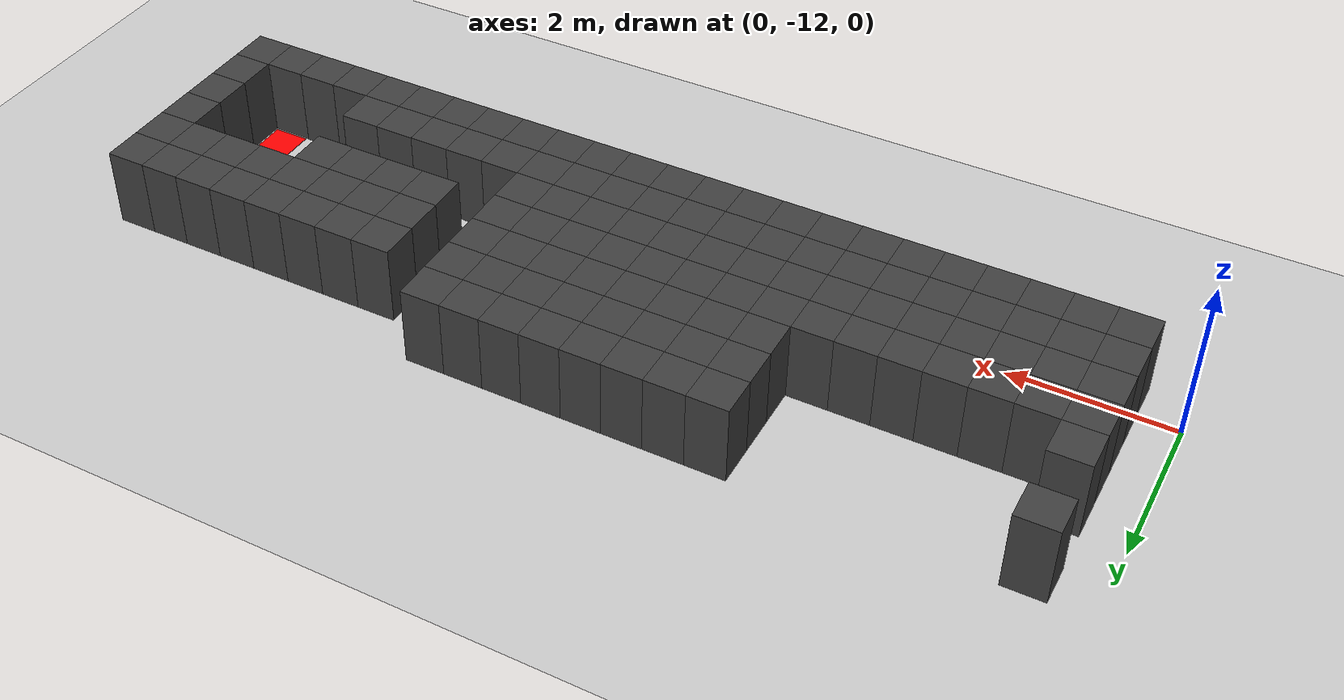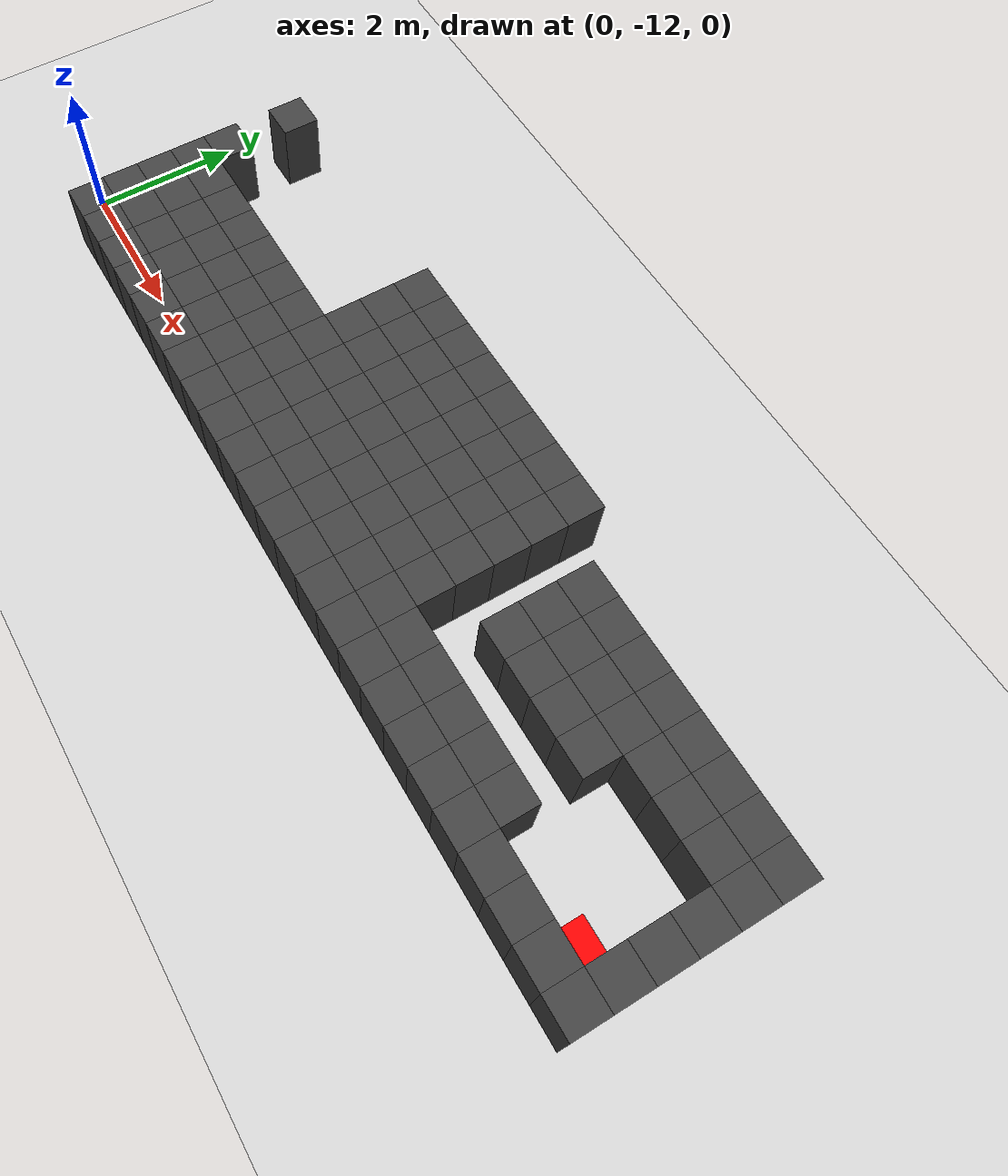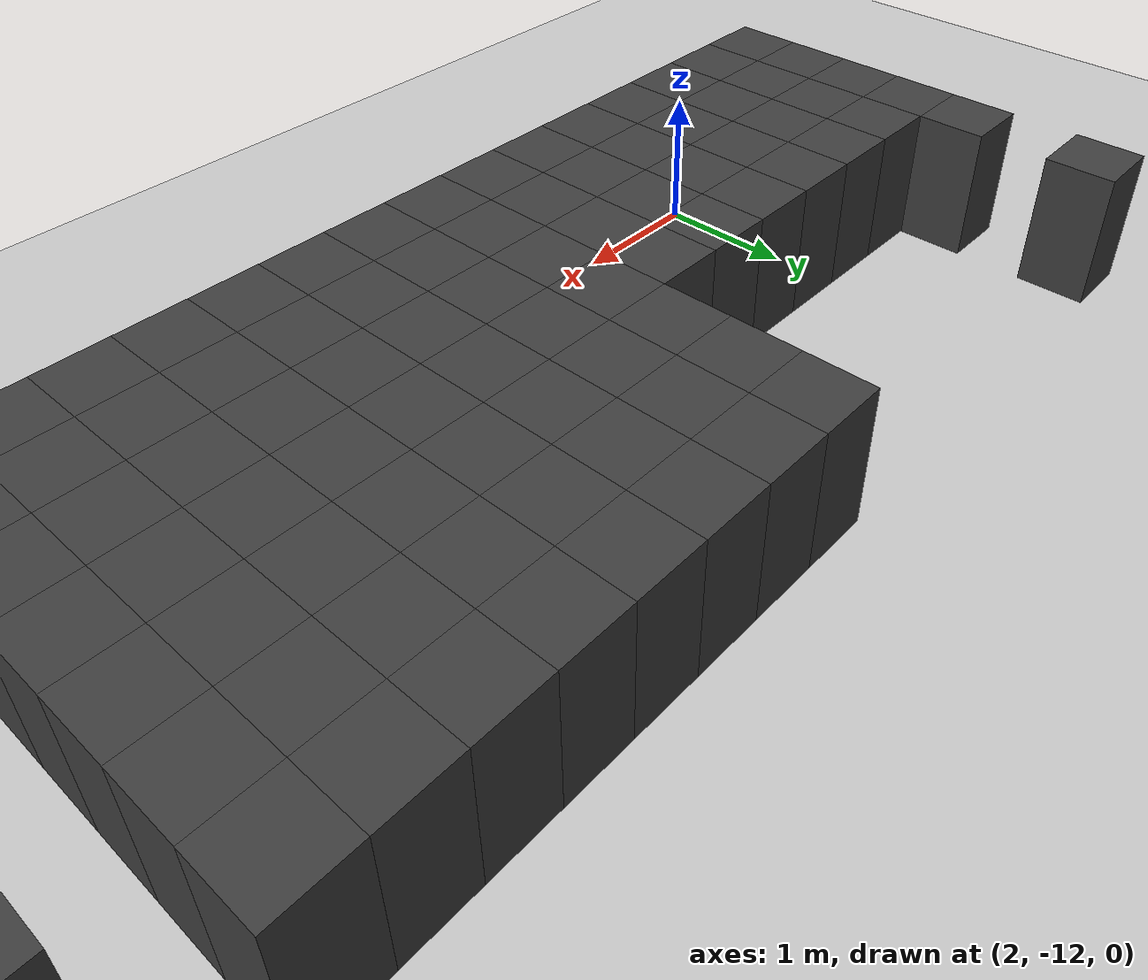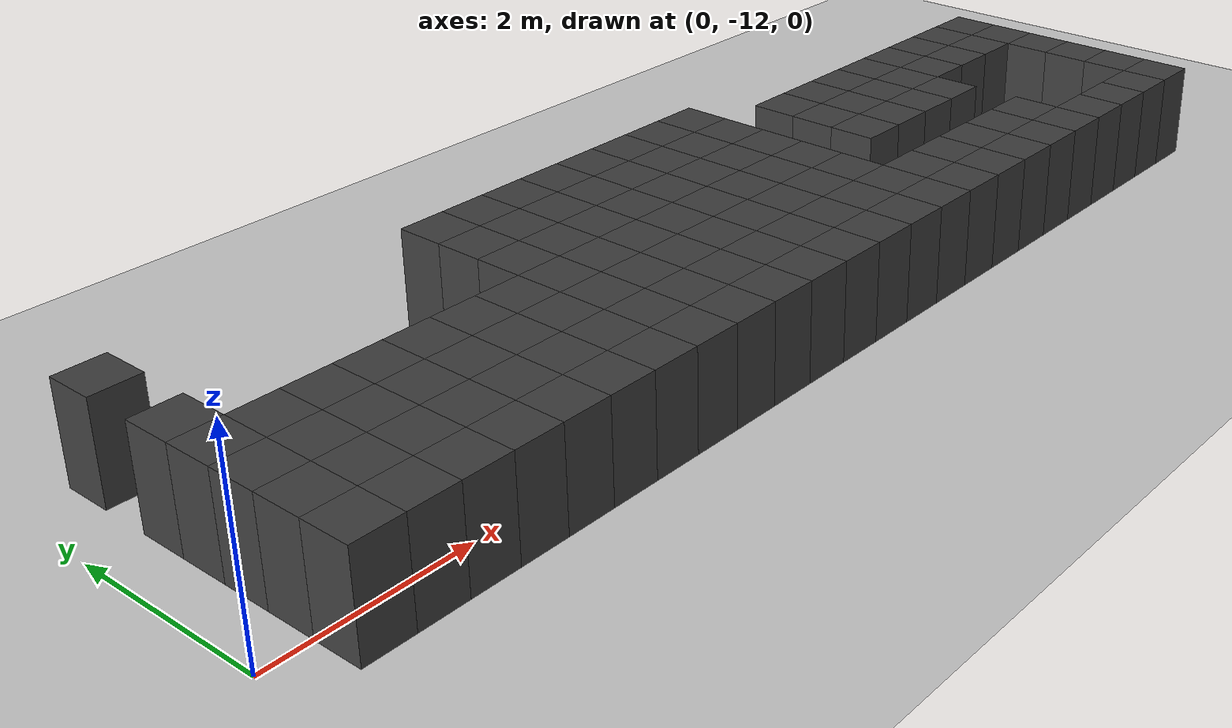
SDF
<sdf version="1.7">
 <world name="map_14802">
  <model name="ground_plane">
   <static>true</static>
   <link name="link">
    <collision name="collision">
     <geometry><plane><normal>0 0 1</normal><size>200 200</size></plane></geometry>
    </collision>
    <visual name="visual">
     <geometry><plane><normal>0 0 1</normal><size>200 200</size></plane></geometry>
     <material><ambient>0.8 0.8 0.8 1</ambient><diffuse>0.8 0.8 0.8 1</diffuse></material>
    </visual>
   </link>
  </model>
  <model name="maze_environment">
   <static>true</static>
   <link name="wall_1453">
    <pose>0.750 -9.250 0.500 0 0 0</pose>
    <collision name="col"><geometry><box><size>0.5 0.5 1.0</size></box></geometry></collision>
    <visual name="vis">
     <geometry><box><size>0.5 0.5 1.0</size></box></geometry>
     <material><ambient>0.15 0.15 0.15 1</ambient><diffuse>0.25 0.25 0.25 1</diffuse></material>
    </visual>
   </link>
   <link name="wall_1454">
    <pose>4.250 -9.250 0.500 0 0 0</pose>
    <collision name="col"><geometry><box><size>0.5 0.5 1.0</size></box></geometry></collision>
    <visual name="vis">
     <geometry><box><size>0.5 0.5 1.0</size></box></geometry>
     <material><ambient>0.15 0.15 0.15 1</ambient><diffuse>0.25 0.25 0.25 1</diffuse></material>
    </visual>
   </link>
   <link name="wall_1455">
    <pose>4.750 -9.250 0.500 0 0 0</pose>
    <collision name="col"><geometry><box><size>0.5 0.5 1.0</size></box></geometry></collision>
    <visual name="vis">
     <geometry><box><size>0.5 0.5 1.0</size></box></geometry>
     <material><ambient>0.15 0.15 0.15 1</ambient><diffuse>0.25 0.25 0.25 1</diffuse></material>
    </visual>
   </link>
   <link name="wall_1456">
    <pose>5.250 -9.250 0.500 0 0 0</pose>
    <collision name="col"><geometry><box><size>0.5 0.5 1.0</size></box></geometry></collision>
    <visual name="vis">
     <geometry><box><size>0.5 0.5 1.0</size></box></geometry>
     <material><ambient>0.15 0.15 0.15 1</ambient><diffuse>0.25 0.25 0.25 1</diffuse></material>
    </visual>
   </link>
   <link name="wall_1457">
    <pose>5.750 -9.250 0.500 0 0 0</pose>
    <collision name="col"><geometry><box><size>0.5 0.5 1.0</size></box></geometry></collision>
    <visual name="vis">
     <geometry><box><size>0.5 0.5 1.0</size></box></geometry>
     <material><ambient>0.15 0.15 0.15 1</ambient><diffuse>0.25 0.25 0.25 1</diffuse></material>
    </visual>
   </link>
   <link name="wall_1458">
    <pose>6.250 -9.250 0.500 0 0 0</pose>
    <collision name="col"><geometry><box><size>0.5 0.5 1.0</size></box></geometry></collision>
    <visual name="vis">
     <geometry><box><size>0.5 0.5 1.0</size></box></geometry>
     <material><ambient>0.15 0.15 0.15 1</ambient><diffuse>0.25 0.25 0.25 1</diffuse></material>
    </visual>
   </link>
   <link name="wall_1459">
    <pose>6.750 -9.250 0.500 0 0 0</pose>
    <collision name="col"><geometry><box><size>0.5 0.5 1.0</size></box></geometry></collision>
    <visual name="vis">
     <geometry><box><size>0.5 0.5 1.0</size></box></geometry>
     <material><ambient>0.15 0.15 0.15 1</ambient><diffuse>0.25 0.25 0.25 1</diffuse></material>
    </visual>
   </link>
   <link name="wall_1460">
    <pose>7.250 -9.250 0.500 0 0 0</pose>
    <collision name="col"><geometry><box><size>0.5 0.5 1.0</size></box></geometry></collision>
    <visual name="vis">
     <geometry><box><size>0.5 0.5 1.0</size></box></geometry>
     <material><ambient>0.15 0.15 0.15 1</ambient><diffuse>0.25 0.25 0.25 1</diffuse></material>
    </visual>
   </link>
   <link name="wall_1461">
    <pose>7.750 -9.250 0.500 0 0 0</pose>
    <collision name="col"><geometry><box><size>0.5 0.5 1.0</size></box></geometry></collision>
    <visual name="vis">
     <geometry><box><size>0.5 0.5 1.0</size></box></geometry>
     <material><ambient>0.15 0.15 0.15 1</ambient><diffuse>0.25 0.25 0.25 1</diffuse></material>
    </visual>
   </link>
   <link name="wall_1494">
    <pose>4.250 -9.750 0.500 0 0 0</pose>
    <collision name="col"><geometry><box><size>0.5 0.5 1.0</size></box></geometry></collision>
    <visual name="vis">
     <geometry><box><size>0.5 0.5 1.0</size></box></geometry>
     <material><ambient>0.15 0.15 0.15 1</ambient><diffuse>0.25 0.25 0.25 1</diffuse></material>
    </visual>
   </link>
   <link name="wall_1495">
    <pose>4.750 -9.750 0.500 0 0 0</pose>
    <collision name="col"><geometry><box><size>0.5 0.5 1.0</size></box></geometry></collision>
    <visual name="vis">
     <geometry><box><size>0.5 0.5 1.0</size></box></geometry>
     <material><ambient>0.15 0.15 0.15 1</ambient><diffuse>0.25 0.25 0.25 1</diffuse></material>
    </visual>
   </link>
   <link name="wall_1496">
    <pose>5.250 -9.750 0.500 0 0 0</pose>
    <collision name="col"><geometry><box><size>0.5 0.5 1.0</size></box></geometry></collision>
    <visual name="vis">
     <geometry><box><size>0.5 0.5 1.0</size></box></geometry>
     <material><ambient>0.15 0.15 0.15 1</ambient><diffuse>0.25 0.25 0.25 1</diffuse></material>
    </visual>
   </link>
   <link name="wall_1497">
    <pose>5.750 -9.750 0.500 0 0 0</pose>
    <collision name="col"><geometry><box><size>0.5 0.5 1.0</size></box></geometry></collision>
    <visual name="vis">
     <geometry><box><size>0.5 0.5 1.0</size></box></geometry>
     <material><ambient>0.15 0.15 0.15 1</ambient><diffuse>0.25 0.25 0.25 1</diffuse></material>
    </visual>
   </link>
   <link name="wall_1498">
    <pose>6.250 -9.750 0.500 0 0 0</pose>
    <collision name="col"><geometry><box><size>0.5 0.5 1.0</size></box></geometry></collision>
    <visual name="vis">
     <geometry><box><size>0.5 0.5 1.0</size></box></geometry>
     <material><ambient>0.15 0.15 0.15 1</ambient><diffuse>0.25 0.25 0.25 1</diffuse></material>
    </visual>
   </link>
   <link name="wall_1499">
    <pose>6.750 -9.750 0.500 0 0 0</pose>
    <collision name="col"><geometry><box><size>0.5 0.5 1.0</size></box></geometry></collision>
    <visual name="vis">
     <geometry><box><size>0.5 0.5 1.0</size></box></geometry>
     <material><ambient>0.15 0.15 0.15 1</ambient><diffuse>0.25 0.25 0.25 1</diffuse></material>
    </visual>
   </link>
   <link name="wall_1500">
    <pose>7.250 -9.750 0.500 0 0 0</pose>
    <collision name="col"><geometry><box><size>0.5 0.5 1.0</size></box></geometry></collision>
    <visual name="vis">
     <geometry><box><size>0.5 0.5 1.0</size></box></geometry>
     <material><ambient>0.15 0.15 0.15 1</ambient><diffuse>0.25 0.25 0.25 1</diffuse></material>
    </visual>
   </link>
   <link name="wall_1501">
    <pose>7.750 -9.750 0.500 0 0 0</pose>
    <collision name="col"><geometry><box><size>0.5 0.5 1.0</size></box></geometry></collision>
    <visual name="vis">
     <geometry><box><size>0.5 0.5 1.0</size></box></geometry>
     <material><ambient>0.15 0.15 0.15 1</ambient><diffuse>0.25 0.25 0.25 1</diffuse></material>
    </visual>
   </link>
   <link name="wall_1502">
    <pose>8.750 -9.750 0.500 0 0 0</pose>
    <collision name="col"><geometry><box><size>0.5 0.5 1.0</size></box></geometry></collision>
    <visual name="vis">
     <geometry><box><size>0.5 0.5 1.0</size></box></geometry>
     <material><ambient>0.15 0.15 0.15 1</ambient><diffuse>0.25 0.25 0.25 1</diffuse></material>
    </visual>
   </link>
   <link name="wall_1503">
    <pose>9.250 -9.750 0.500 0 0 0</pose>
    <collision name="col"><geometry><box><size>0.5 0.5 1.0</size></box></geometry></collision>
    <visual name="vis">
     <geometry><box><size>0.5 0.5 1.0</size></box></geometry>
     <material><ambient>0.15 0.15 0.15 1</ambient><diffuse>0.25 0.25 0.25 1</diffuse></material>
    </visual>
   </link>
   <link name="wall_1504">
    <pose>9.750 -9.750 0.500 0 0 0</pose>
    <collision name="col"><geometry><box><size>0.5 0.5 1.0</size></box></geometry></collision>
    <visual name="vis">
     <geometry><box><size>0.5 0.5 1.0</size></box></geometry>
     <material><ambient>0.15 0.15 0.15 1</ambient><diffuse>0.25 0.25 0.25 1</diffuse></material>
    </visual>
   </link>
   <link name="wall_1505">
    <pose>10.250 -9.750 0.500 0 0 0</pose>
    <collision name="col"><geometry><box><size>0.5 0.5 1.0</size></box></geometry></collision>
    <visual name="vis">
     <geometry><box><size>0.5 0.5 1.0</size></box></geometry>
     <material><ambient>0.15 0.15 0.15 1</ambient><diffuse>0.25 0.25 0.25 1</diffuse></material>
    </visual>
   </link>
   <link name="wall_1506">
    <pose>10.750 -9.750 0.500 0 0 0</pose>
    <collision name="col"><geometry><box><size>0.5 0.5 1.0</size></box></geometry></collision>
    <visual name="vis">
     <geometry><box><size>0.5 0.5 1.0</size></box></geometry>
     <material><ambient>0.15 0.15 0.15 1</ambient><diffuse>0.25 0.25 0.25 1</diffuse></material>
    </visual>
   </link>
   <link name="wall_1507">
    <pose>11.250 -9.750 0.500 0 0 0</pose>
    <collision name="col"><geometry><box><size>0.5 0.5 1.0</size></box></geometry></collision>
    <visual name="vis">
     <geometry><box><size>0.5 0.5 1.0</size></box></geometry>
     <material><ambient>0.15 0.15 0.15 1</ambient><diffuse>0.25 0.25 0.25 1</diffuse></material>
    </visual>
   </link>
   <link name="wall_1508">
    <pose>11.750 -9.750 0.500 0 0 0</pose>
    <collision name="col"><geometry><box><size>0.5 0.5 1.0</size></box></geometry></collision>
    <visual name="vis">
     <geometry><box><size>0.5 0.5 1.0</size></box></geometry>
     <material><ambient>0.15 0.15 0.15 1</ambient><diffuse>0.25 0.25 0.25 1</diffuse></material>
    </visual>
   </link>
   <link name="wall_1509">
    <pose>12.250 -9.750 0.500 0 0 0</pose>
    <collision name="col"><geometry><box><size>0.5 0.5 1.0</size></box></geometry></collision>
    <visual name="vis">
     <geometry><box><size>0.5 0.5 1.0</size></box></geometry>
     <material><ambient>0.15 0.15 0.15 1</ambient><diffuse>0.25 0.25 0.25 1</diffuse></material>
    </visual>
   </link>
   <link name="wall_1536">
    <pose>0.750 -10.250 0.500 0 0 0</pose>
    <collision name="col"><geometry><box><size>0.5 0.5 1.0</size></box></geometry></collision>
    <visual name="vis">
     <geometry><box><size>0.5 0.5 1.0</size></box></geometry>
     <material><ambient>0.15 0.15 0.15 1</ambient><diffuse>0.25 0.25 0.25 1</diffuse></material>
    </visual>
   </link>
   <link name="wall_1537">
    <pose>4.250 -10.250 0.500 0 0 0</pose>
    <collision name="col"><geometry><box><size>0.5 0.5 1.0</size></box></geometry></collision>
    <visual name="vis">
     <geometry><box><size>0.5 0.5 1.0</size></box></geometry>
     <material><ambient>0.15 0.15 0.15 1</ambient><diffuse>0.25 0.25 0.25 1</diffuse></material>
    </visual>
   </link>
   <link name="wall_1538">
    <pose>4.750 -10.250 0.500 0 0 0</pose>
    <collision name="col"><geometry><box><size>0.5 0.5 1.0</size></box></geometry></collision>
    <visual name="vis">
     <geometry><box><size>0.5 0.5 1.0</size></box></geometry>
     <material><ambient>0.15 0.15 0.15 1</ambient><diffuse>0.25 0.25 0.25 1</diffuse></material>
    </visual>
   </link>
   <link name="wall_1539">
    <pose>5.250 -10.250 0.500 0 0 0</pose>
    <collision name="col"><geometry><box><size>0.5 0.5 1.0</size></box></geometry></collision>
    <visual name="vis">
     <geometry><box><size>0.5 0.5 1.0</size></box></geometry>
     <material><ambient>0.15 0.15 0.15 1</ambient><diffuse>0.25 0.25 0.25 1</diffuse></material>
    </visual>
   </link>
   <link name="wall_1540">
    <pose>5.750 -10.250 0.500 0 0 0</pose>
    <collision name="col"><geometry><box><size>0.5 0.5 1.0</size></box></geometry></collision>
    <visual name="vis">
     <geometry><box><size>0.5 0.5 1.0</size></box></geometry>
     <material><ambient>0.15 0.15 0.15 1</ambient><diffuse>0.25 0.25 0.25 1</diffuse></material>
    </visual>
   </link>
   <link name="wall_1541">
    <pose>6.250 -10.250 0.500 0 0 0</pose>
    <collision name="col"><geometry><box><size>0.5 0.5 1.0</size></box></geometry></collision>
    <visual name="vis">
     <geometry><box><size>0.5 0.5 1.0</size></box></geometry>
     <material><ambient>0.15 0.15 0.15 1</ambient><diffuse>0.25 0.25 0.25 1</diffuse></material>
    </visual>
   </link>
   <link name="wall_1542">
    <pose>6.750 -10.250 0.500 0 0 0</pose>
    <collision name="col"><geometry><box><size>0.5 0.5 1.0</size></box></geometry></collision>
    <visual name="vis">
     <geometry><box><size>0.5 0.5 1.0</size></box></geometry>
     <material><ambient>0.15 0.15 0.15 1</ambient><diffuse>0.25 0.25 0.25 1</diffuse></material>
    </visual>
   </link>
   <link name="wall_1543">
    <pose>7.250 -10.250 0.500 0 0 0</pose>
    <collision name="col"><geometry><box><size>0.5 0.5 1.0</size></box></geometry></collision>
    <visual name="vis">
     <geometry><box><size>0.5 0.5 1.0</size></box></geometry>
     <material><ambient>0.15 0.15 0.15 1</ambient><diffuse>0.25 0.25 0.25 1</diffuse></material>
    </visual>
   </link>
   <link name="wall_1544">
    <pose>7.750 -10.250 0.500 0 0 0</pose>
    <collision name="col"><geometry><box><size>0.5 0.5 1.0</size></box></geometry></collision>
    <visual name="vis">
     <geometry><box><size>0.5 0.5 1.0</size></box></geometry>
     <material><ambient>0.15 0.15 0.15 1</ambient><diffuse>0.25 0.25 0.25 1</diffuse></material>
    </visual>
   </link>
   <link name="wall_1545">
    <pose>8.750 -10.250 0.500 0 0 0</pose>
    <collision name="col"><geometry><box><size>0.5 0.5 1.0</size></box></geometry></collision>
    <visual name="vis">
     <geometry><box><size>0.5 0.5 1.0</size></box></geometry>
     <material><ambient>0.15 0.15 0.15 1</ambient><diffuse>0.25 0.25 0.25 1</diffuse></material>
    </visual>
   </link>
   <link name="wall_1546">
    <pose>9.250 -10.250 0.500 0 0 0</pose>
    <collision name="col"><geometry><box><size>0.5 0.5 1.0</size></box></geometry></collision>
    <visual name="vis">
     <geometry><box><size>0.5 0.5 1.0</size></box></geometry>
     <material><ambient>0.15 0.15 0.15 1</ambient><diffuse>0.25 0.25 0.25 1</diffuse></material>
    </visual>
   </link>
   <link name="wall_1547">
    <pose>9.750 -10.250 0.500 0 0 0</pose>
    <collision name="col"><geometry><box><size>0.5 0.5 1.0</size></box></geometry></collision>
    <visual name="vis">
     <geometry><box><size>0.5 0.5 1.0</size></box></geometry>
     <material><ambient>0.15 0.15 0.15 1</ambient><diffuse>0.25 0.25 0.25 1</diffuse></material>
    </visual>
   </link>
   <link name="wall_1548">
    <pose>10.250 -10.250 0.500 0 0 0</pose>
    <collision name="col"><geometry><box><size>0.5 0.5 1.0</size></box></geometry></collision>
    <visual name="vis">
     <geometry><box><size>0.5 0.5 1.0</size></box></geometry>
     <material><ambient>0.15 0.15 0.15 1</ambient><diffuse>0.25 0.25 0.25 1</diffuse></material>
    </visual>
   </link>
   <link name="wall_1549">
    <pose>10.750 -10.250 0.500 0 0 0</pose>
    <collision name="col"><geometry><box><size>0.5 0.5 1.0</size></box></geometry></collision>
    <visual name="vis">
     <geometry><box><size>0.5 0.5 1.0</size></box></geometry>
     <material><ambient>0.15 0.15 0.15 1</ambient><diffuse>0.25 0.25 0.25 1</diffuse></material>
    </visual>
   </link>
   <link name="wall_1550">
    <pose>11.250 -10.250 0.500 0 0 0</pose>
    <collision name="col"><geometry><box><size>0.5 0.5 1.0</size></box></geometry></collision>
    <visual name="vis">
     <geometry><box><size>0.5 0.5 1.0</size></box></geometry>
     <material><ambient>0.15 0.15 0.15 1</ambient><diffuse>0.25 0.25 0.25 1</diffuse></material>
    </visual>
   </link>
   <link name="wall_1551">
    <pose>11.750 -10.250 0.500 0 0 0</pose>
    <collision name="col"><geometry><box><size>0.5 0.5 1.0</size></box></geometry></collision>
    <visual name="vis">
     <geometry><box><size>0.5 0.5 1.0</size></box></geometry>
     <material><ambient>0.15 0.15 0.15 1</ambient><diffuse>0.25 0.25 0.25 1</diffuse></material>
    </visual>
   </link>
   <link name="wall_1552">
    <pose>12.250 -10.250 0.500 0 0 0</pose>
    <collision name="col"><geometry><box><size>0.5 0.5 1.0</size></box></geometry></collision>
    <visual name="vis">
     <geometry><box><size>0.5 0.5 1.0</size></box></geometry>
     <material><ambient>0.15 0.15 0.15 1</ambient><diffuse>0.25 0.25 0.25 1</diffuse></material>
    </visual>
   </link>
   <link name="wall_1579">
    <pose>0.750 -10.750 0.500 0 0 0</pose>
    <collision name="col"><geometry><box><size>0.5 0.5 1.0</size></box></geometry></collision>
    <visual name="vis">
     <geometry><box><size>0.5 0.5 1.0</size></box></geometry>
     <material><ambient>0.15 0.15 0.15 1</ambient><diffuse>0.25 0.25 0.25 1</diffuse></material>
    </visual>
   </link>
   <link name="wall_1580">
    <pose>1.250 -10.750 0.500 0 0 0</pose>
    <collision name="col"><geometry><box><size>0.5 0.5 1.0</size></box></geometry></collision>
    <visual name="vis">
     <geometry><box><size>0.5 0.5 1.0</size></box></geometry>
     <material><ambient>0.15 0.15 0.15 1</ambient><diffuse>0.25 0.25 0.25 1</diffuse></material>
    </visual>
   </link>
   <link name="wall_1581">
    <pose>1.750 -10.750 0.500 0 0 0</pose>
    <collision name="col"><geometry><box><size>0.5 0.5 1.0</size></box></geometry></collision>
    <visual name="vis">
     <geometry><box><size>0.5 0.5 1.0</size></box></geometry>
     <material><ambient>0.15 0.15 0.15 1</ambient><diffuse>0.25 0.25 0.25 1</diffuse></material>
    </visual>
   </link>
   <link name="wall_1582">
    <pose>2.250 -10.750 0.500 0 0 0</pose>
    <collision name="col"><geometry><box><size>0.5 0.5 1.0</size></box></geometry></collision>
    <visual name="vis">
     <geometry><box><size>0.5 0.5 1.0</size></box></geometry>
     <material><ambient>0.15 0.15 0.15 1</ambient><diffuse>0.25 0.25 0.25 1</diffuse></material>
    </visual>
   </link>
   <link name="wall_1583">
    <pose>2.750 -10.750 0.500 0 0 0</pose>
    <collision name="col"><geometry><box><size>0.5 0.5 1.0</size></box></geometry></collision>
    <visual name="vis">
     <geometry><box><size>0.5 0.5 1.0</size></box></geometry>
     <material><ambient>0.15 0.15 0.15 1</ambient><diffuse>0.25 0.25 0.25 1</diffuse></material>
    </visual>
   </link>
   <link name="wall_1584">
    <pose>3.250 -10.750 0.500 0 0 0</pose>
    <collision name="col"><geometry><box><size>0.5 0.5 1.0</size></box></geometry></collision>
    <visual name="vis">
     <geometry><box><size>0.5 0.5 1.0</size></box></geometry>
     <material><ambient>0.15 0.15 0.15 1</ambient><diffuse>0.25 0.25 0.25 1</diffuse></material>
    </visual>
   </link>
   <link name="wall_1585">
    <pose>3.750 -10.750 0.500 0 0 0</pose>
    <collision name="col"><geometry><box><size>0.5 0.5 1.0</size></box></geometry></collision>
    <visual name="vis">
     <geometry><box><size>0.5 0.5 1.0</size></box></geometry>
     <material><ambient>0.15 0.15 0.15 1</ambient><diffuse>0.25 0.25 0.25 1</diffuse></material>
    </visual>
   </link>
   <link name="wall_1586">
    <pose>4.250 -10.750 0.500 0 0 0</pose>
    <collision name="col"><geometry><box><size>0.5 0.5 1.0</size></box></geometry></collision>
    <visual name="vis">
     <geometry><box><size>0.5 0.5 1.0</size></box></geometry>
     <material><ambient>0.15 0.15 0.15 1</ambient><diffuse>0.25 0.25 0.25 1</diffuse></material>
    </visual>
   </link>
   <link name="wall_1587">
    <pose>4.750 -10.750 0.500 0 0 0</pose>
    <collision name="col"><geometry><box><size>0.5 0.5 1.0</size></box></geometry></collision>
    <visual name="vis">
     <geometry><box><size>0.5 0.5 1.0</size></box></geometry>
     <material><ambient>0.15 0.15 0.15 1</ambient><diffuse>0.25 0.25 0.25 1</diffuse></material>
    </visual>
   </link>
   <link name="wall_1588">
    <pose>5.250 -10.750 0.500 0 0 0</pose>
    <collision name="col"><geometry><box><size>0.5 0.5 1.0</size></box></geometry></collision>
    <visual name="vis">
     <geometry><box><size>0.5 0.5 1.0</size></box></geometry>
     <material><ambient>0.15 0.15 0.15 1</ambient><diffuse>0.25 0.25 0.25 1</diffuse></material>
    </visual>
   </link>
   <link name="wall_1589">
    <pose>5.750 -10.750 0.500 0 0 0</pose>
    <collision name="col"><geometry><box><size>0.5 0.5 1.0</size></box></geometry></collision>
    <visual name="vis">
     <geometry><box><size>0.5 0.5 1.0</size></box></geometry>
     <material><ambient>0.15 0.15 0.15 1</ambient><diffuse>0.25 0.25 0.25 1</diffuse></material>
    </visual>
   </link>
   <link name="wall_1590">
    <pose>6.250 -10.750 0.500 0 0 0</pose>
    <collision name="col"><geometry><box><size>0.5 0.5 1.0</size></box></geometry></collision>
    <visual name="vis">
     <geometry><box><size>0.5 0.5 1.0</size></box></geometry>
     <material><ambient>0.15 0.15 0.15 1</ambient><diffuse>0.25 0.25 0.25 1</diffuse></material>
    </visual>
   </link>
   <link name="wall_1591">
    <pose>6.750 -10.750 0.500 0 0 0</pose>
    <collision name="col"><geometry><box><size>0.5 0.5 1.0</size></box></geometry></collision>
    <visual name="vis">
     <geometry><box><size>0.5 0.5 1.0</size></box></geometry>
     <material><ambient>0.15 0.15 0.15 1</ambient><diffuse>0.25 0.25 0.25 1</diffuse></material>
    </visual>
   </link>
   <link name="wall_1592">
    <pose>7.250 -10.750 0.500 0 0 0</pose>
    <collision name="col"><geometry><box><size>0.5 0.5 1.0</size></box></geometry></collision>
    <visual name="vis">
     <geometry><box><size>0.5 0.5 1.0</size></box></geometry>
     <material><ambient>0.15 0.15 0.15 1</ambient><diffuse>0.25 0.25 0.25 1</diffuse></material>
    </visual>
   </link>
   <link name="wall_1593">
    <pose>7.750 -10.750 0.500 0 0 0</pose>
    <collision name="col"><geometry><box><size>0.5 0.5 1.0</size></box></geometry></collision>
    <visual name="vis">
     <geometry><box><size>0.5 0.5 1.0</size></box></geometry>
     <material><ambient>0.15 0.15 0.15 1</ambient><diffuse>0.25 0.25 0.25 1</diffuse></material>
    </visual>
   </link>
   <link name="wall_1594">
    <pose>8.750 -10.750 0.500 0 0 0</pose>
    <collision name="col"><geometry><box><size>0.5 0.5 1.0</size></box></geometry></collision>
    <visual name="vis">
     <geometry><box><size>0.5 0.5 1.0</size></box></geometry>
     <material><ambient>0.15 0.15 0.15 1</ambient><diffuse>0.25 0.25 0.25 1</diffuse></material>
    </visual>
   </link>
   <link name="wall_1595">
    <pose>9.250 -10.750 0.500 0 0 0</pose>
    <collision name="col"><geometry><box><size>0.5 0.5 1.0</size></box></geometry></collision>
    <visual name="vis">
     <geometry><box><size>0.5 0.5 1.0</size></box></geometry>
     <material><ambient>0.15 0.15 0.15 1</ambient><diffuse>0.25 0.25 0.25 1</diffuse></material>
    </visual>
   </link>
   <link name="wall_1596">
    <pose>9.750 -10.750 0.500 0 0 0</pose>
    <collision name="col"><geometry><box><size>0.5 0.5 1.0</size></box></geometry></collision>
    <visual name="vis">
     <geometry><box><size>0.5 0.5 1.0</size></box></geometry>
     <material><ambient>0.15 0.15 0.15 1</ambient><diffuse>0.25 0.25 0.25 1</diffuse></material>
    </visual>
   </link>
   <link name="wall_1597">
    <pose>10.250 -10.750 0.500 0 0 0</pose>
    <collision name="col"><geometry><box><size>0.5 0.5 1.0</size></box></geometry></collision>
    <visual name="vis">
     <geometry><box><size>0.5 0.5 1.0</size></box></geometry>
     <material><ambient>0.15 0.15 0.15 1</ambient><diffuse>0.25 0.25 0.25 1</diffuse></material>
    </visual>
   </link>
   <link name="wall_1598">
    <pose>12.250 -10.750 0.500 0 0 0</pose>
    <collision name="col"><geometry><box><size>0.5 0.5 1.0</size></box></geometry></collision>
    <visual name="vis">
     <geometry><box><size>0.5 0.5 1.0</size></box></geometry>
     <material><ambient>0.15 0.15 0.15 1</ambient><diffuse>0.25 0.25 0.25 1</diffuse></material>
    </visual>
   </link>
   <link name="wall_1625">
    <pose>0.750 -11.250 0.500 0 0 0</pose>
    <collision name="col"><geometry><box><size>0.5 0.5 1.0</size></box></geometry></collision>
    <visual name="vis">
     <geometry><box><size>0.5 0.5 1.0</size></box></geometry>
     <material><ambient>0.15 0.15 0.15 1</ambient><diffuse>0.25 0.25 0.25 1</diffuse></material>
    </visual>
   </link>
   <link name="wall_1626">
    <pose>1.250 -11.250 0.500 0 0 0</pose>
    <collision name="col"><geometry><box><size>0.5 0.5 1.0</size></box></geometry></collision>
    <visual name="vis">
     <geometry><box><size>0.5 0.5 1.0</size></box></geometry>
     <material><ambient>0.15 0.15 0.15 1</ambient><diffuse>0.25 0.25 0.25 1</diffuse></material>
    </visual>
   </link>
   <link name="wall_1627">
    <pose>1.750 -11.250 0.500 0 0 0</pose>
    <collision name="col"><geometry><box><size>0.5 0.5 1.0</size></box></geometry></collision>
    <visual name="vis">
     <geometry><box><size>0.5 0.5 1.0</size></box></geometry>
     <material><ambient>0.15 0.15 0.15 1</ambient><diffuse>0.25 0.25 0.25 1</diffuse></material>
    </visual>
   </link>
   <link name="wall_1628">
    <pose>2.250 -11.250 0.500 0 0 0</pose>
    <collision name="col"><geometry><box><size>0.5 0.5 1.0</size></box></geometry></collision>
    <visual name="vis">
     <geometry><box><size>0.5 0.5 1.0</size></box></geometry>
     <material><ambient>0.15 0.15 0.15 1</ambient><diffuse>0.25 0.25 0.25 1</diffuse></material>
    </visual>
   </link>
   <link name="wall_1629">
    <pose>2.750 -11.250 0.500 0 0 0</pose>
    <collision name="col"><geometry><box><size>0.5 0.5 1.0</size></box></geometry></collision>
    <visual name="vis">
     <geometry><box><size>0.5 0.5 1.0</size></box></geometry>
     <material><ambient>0.15 0.15 0.15 1</ambient><diffuse>0.25 0.25 0.25 1</diffuse></material>
    </visual>
   </link>
   <link name="wall_1630">
    <pose>3.250 -11.250 0.500 0 0 0</pose>
    <collision name="col"><geometry><box><size>0.5 0.5 1.0</size></box></geometry></collision>
    <visual name="vis">
     <geometry><box><size>0.5 0.5 1.0</size></box></geometry>
     <material><ambient>0.15 0.15 0.15 1</ambient><diffuse>0.25 0.25 0.25 1</diffuse></material>
    </visual>
   </link>
   <link name="wall_1631">
    <pose>3.750 -11.250 0.500 0 0 0</pose>
    <collision name="col"><geometry><box><size>0.5 0.5 1.0</size></box></geometry></collision>
    <visual name="vis">
     <geometry><box><size>0.5 0.5 1.0</size></box></geometry>
     <material><ambient>0.15 0.15 0.15 1</ambient><diffuse>0.25 0.25 0.25 1</diffuse></material>
    </visual>
   </link>
   <link name="wall_1632">
    <pose>4.250 -11.250 0.500 0 0 0</pose>
    <collision name="col"><geometry><box><size>0.5 0.5 1.0</size></box></geometry></collision>
    <visual name="vis">
     <geometry><box><size>0.5 0.5 1.0</size></box></geometry>
     <material><ambient>0.15 0.15 0.15 1</ambient><diffuse>0.25 0.25 0.25 1</diffuse></material>
    </visual>
   </link>
   <link name="wall_1633">
    <pose>4.750 -11.250 0.500 0 0 0</pose>
    <collision name="col"><geometry><box><size>0.5 0.5 1.0</size></box></geometry></collision>
    <visual name="vis">
     <geometry><box><size>0.5 0.5 1.0</size></box></geometry>
     <material><ambient>0.15 0.15 0.15 1</ambient><diffuse>0.25 0.25 0.25 1</diffuse></material>
    </visual>
   </link>
   <link name="wall_1634">
    <pose>5.250 -11.250 0.500 0 0 0</pose>
    <collision name="col"><geometry><box><size>0.5 0.5 1.0</size></box></geometry></collision>
    <visual name="vis">
     <geometry><box><size>0.5 0.5 1.0</size></box></geometry>
     <material><ambient>0.15 0.15 0.15 1</ambient><diffuse>0.25 0.25 0.25 1</diffuse></material>
    </visual>
   </link>
   <link name="wall_1635">
    <pose>5.750 -11.250 0.500 0 0 0</pose>
    <collision name="col"><geometry><box><size>0.5 0.5 1.0</size></box></geometry></collision>
    <visual name="vis">
     <geometry><box><size>0.5 0.5 1.0</size></box></geometry>
     <material><ambient>0.15 0.15 0.15 1</ambient><diffuse>0.25 0.25 0.25 1</diffuse></material>
    </visual>
   </link>
   <link name="wall_1636">
    <pose>6.250 -11.250 0.500 0 0 0</pose>
    <collision name="col"><geometry><box><size>0.5 0.5 1.0</size></box></geometry></collision>
    <visual name="vis">
     <geometry><box><size>0.5 0.5 1.0</size></box></geometry>
     <material><ambient>0.15 0.15 0.15 1</ambient><diffuse>0.25 0.25 0.25 1</diffuse></material>
    </visual>
   </link>
   <link name="wall_1637">
    <pose>6.750 -11.250 0.500 0 0 0</pose>
    <collision name="col"><geometry><box><size>0.5 0.5 1.0</size></box></geometry></collision>
    <visual name="vis">
     <geometry><box><size>0.5 0.5 1.0</size></box></geometry>
     <material><ambient>0.15 0.15 0.15 1</ambient><diffuse>0.25 0.25 0.25 1</diffuse></material>
    </visual>
   </link>
   <link name="wall_1638">
    <pose>7.250 -11.250 0.500 0 0 0</pose>
    <collision name="col"><geometry><box><size>0.5 0.5 1.0</size></box></geometry></collision>
    <visual name="vis">
     <geometry><box><size>0.5 0.5 1.0</size></box></geometry>
     <material><ambient>0.15 0.15 0.15 1</ambient><diffuse>0.25 0.25 0.25 1</diffuse></material>
    </visual>
   </link>
   <link name="wall_1639">
    <pose>7.750 -11.250 0.500 0 0 0</pose>
    <collision name="col"><geometry><box><size>0.5 0.5 1.0</size></box></geometry></collision>
    <visual name="vis">
     <geometry><box><size>0.5 0.5 1.0</size></box></geometry>
     <material><ambient>0.15 0.15 0.15 1</ambient><diffuse>0.25 0.25 0.25 1</diffuse></material>
    </visual>
   </link>
   <link name="wall_1640">
    <pose>12.250 -11.250 0.500 0 0 0</pose>
    <collision name="col"><geometry><box><size>0.5 0.5 1.0</size></box></geometry></collision>
    <visual name="vis">
     <geometry><box><size>0.5 0.5 1.0</size></box></geometry>
     <material><ambient>0.15 0.15 0.15 1</ambient><diffuse>0.25 0.25 0.25 1</diffuse></material>
    </visual>
   </link>
   <link name="wall_1667">
    <pose>0.750 -11.750 0.500 0 0 0</pose>
    <collision name="col"><geometry><box><size>0.5 0.5 1.0</size></box></geometry></collision>
    <visual name="vis">
     <geometry><box><size>0.5 0.5 1.0</size></box></geometry>
     <material><ambient>0.15 0.15 0.15 1</ambient><diffuse>0.25 0.25 0.25 1</diffuse></material>
    </visual>
   </link>
   <link name="wall_1668">
    <pose>1.250 -11.750 0.500 0 0 0</pose>
    <collision name="col"><geometry><box><size>0.5 0.5 1.0</size></box></geometry></collision>
    <visual name="vis">
     <geometry><box><size>0.5 0.5 1.0</size></box></geometry>
     <material><ambient>0.15 0.15 0.15 1</ambient><diffuse>0.25 0.25 0.25 1</diffuse></material>
    </visual>
   </link>
   <link name="wall_1669">
    <pose>1.750 -11.750 0.500 0 0 0</pose>
    <collision name="col"><geometry><box><size>0.5 0.5 1.0</size></box></geometry></collision>
    <visual name="vis">
     <geometry><box><size>0.5 0.5 1.0</size></box></geometry>
     <material><ambient>0.15 0.15 0.15 1</ambient><diffuse>0.25 0.25 0.25 1</diffuse></material>
    </visual>
   </link>
   <link name="wall_1670">
    <pose>2.250 -11.750 0.500 0 0 0</pose>
    <collision name="col"><geometry><box><size>0.5 0.5 1.0</size></box></geometry></collision>
    <visual name="vis">
     <geometry><box><size>0.5 0.5 1.0</size></box></geometry>
     <material><ambient>0.15 0.15 0.15 1</ambient><diffuse>0.25 0.25 0.25 1</diffuse></material>
    </visual>
   </link>
   <link name="wall_1671">
    <pose>2.750 -11.750 0.500 0 0 0</pose>
    <collision name="col"><geometry><box><size>0.5 0.5 1.0</size></box></geometry></collision>
    <visual name="vis">
     <geometry><box><size>0.5 0.5 1.0</size></box></geometry>
     <material><ambient>0.15 0.15 0.15 1</ambient><diffuse>0.25 0.25 0.25 1</diffuse></material>
    </visual>
   </link>
   <link name="wall_1672">
    <pose>3.250 -11.750 0.500 0 0 0</pose>
    <collision name="col"><geometry><box><size>0.5 0.5 1.0</size></box></geometry></collision>
    <visual name="vis">
     <geometry><box><size>0.5 0.5 1.0</size></box></geometry>
     <material><ambient>0.15 0.15 0.15 1</ambient><diffuse>0.25 0.25 0.25 1</diffuse></material>
    </visual>
   </link>
   <link name="wall_1673">
    <pose>3.750 -11.750 0.500 0 0 0</pose>
    <collision name="col"><geometry><box><size>0.5 0.5 1.0</size></box></geometry></collision>
    <visual name="vis">
     <geometry><box><size>0.5 0.5 1.0</size></box></geometry>
     <material><ambient>0.15 0.15 0.15 1</ambient><diffuse>0.25 0.25 0.25 1</diffuse></material>
    </visual>
   </link>
   <link name="wall_1674">
    <pose>4.250 -11.750 0.500 0 0 0</pose>
    <collision name="col"><geometry><box><size>0.5 0.5 1.0</size></box></geometry></collision>
    <visual name="vis">
     <geometry><box><size>0.5 0.5 1.0</size></box></geometry>
     <material><ambient>0.15 0.15 0.15 1</ambient><diffuse>0.25 0.25 0.25 1</diffuse></material>
    </visual>
   </link>
   <link name="wall_1675">
    <pose>4.750 -11.750 0.500 0 0 0</pose>
    <collision name="col"><geometry><box><size>0.5 0.5 1.0</size></box></geometry></collision>
    <visual name="vis">
     <geometry><box><size>0.5 0.5 1.0</size></box></geometry>
     <material><ambient>0.15 0.15 0.15 1</ambient><diffuse>0.25 0.25 0.25 1</diffuse></material>
    </visual>
   </link>
   <link name="wall_1676">
    <pose>5.250 -11.750 0.500 0 0 0</pose>
    <collision name="col"><geometry><box><size>0.5 0.5 1.0</size></box></geometry></collision>
    <visual name="vis">
     <geometry><box><size>0.5 0.5 1.0</size></box></geometry>
     <material><ambient>0.15 0.15 0.15 1</ambient><diffuse>0.25 0.25 0.25 1</diffuse></material>
    </visual>
   </link>
   <link name="wall_1677">
    <pose>5.750 -11.750 0.500 0 0 0</pose>
    <collision name="col"><geometry><box><size>0.5 0.5 1.0</size></box></geometry></collision>
    <visual name="vis">
     <geometry><box><size>0.5 0.5 1.0</size></box></geometry>
     <material><ambient>0.15 0.15 0.15 1</ambient><diffuse>0.25 0.25 0.25 1</diffuse></material>
    </visual>
   </link>
   <link name="wall_1678">
    <pose>6.250 -11.750 0.500 0 0 0</pose>
    <collision name="col"><geometry><box><size>0.5 0.5 1.0</size></box></geometry></collision>
    <visual name="vis">
     <geometry><box><size>0.5 0.5 1.0</size></box></geometry>
     <material><ambient>0.15 0.15 0.15 1</ambient><diffuse>0.25 0.25 0.25 1</diffuse></material>
    </visual>
   </link>
   <link name="wall_1679">
    <pose>6.750 -11.750 0.500 0 0 0</pose>
    <collision name="col"><geometry><box><size>0.5 0.5 1.0</size></box></geometry></collision>
    <visual name="vis">
     <geometry><box><size>0.5 0.5 1.0</size></box></geometry>
     <material><ambient>0.15 0.15 0.15 1</ambient><diffuse>0.25 0.25 0.25 1</diffuse></material>
    </visual>
   </link>
   <link name="wall_1680">
    <pose>7.250 -11.750 0.500 0 0 0</pose>
    <collision name="col"><geometry><box><size>0.5 0.5 1.0</size></box></geometry></collision>
    <visual name="vis">
     <geometry><box><size>0.5 0.5 1.0</size></box></geometry>
     <material><ambient>0.15 0.15 0.15 1</ambient><diffuse>0.25 0.25 0.25 1</diffuse></material>
    </visual>
   </link>
   <link name="wall_1681">
    <pose>7.750 -11.750 0.500 0 0 0</pose>
    <collision name="col"><geometry><box><size>0.5 0.5 1.0</size></box></geometry></collision>
    <visual name="vis">
     <geometry><box><size>0.5 0.5 1.0</size></box></geometry>
     <material><ambient>0.15 0.15 0.15 1</ambient><diffuse>0.25 0.25 0.25 1</diffuse></material>
    </visual>
   </link>
   <link name="wall_1682">
    <pose>8.250 -11.750 0.500 0 0 0</pose>
    <collision name="col"><geometry><box><size>0.5 0.5 1.0</size></box></geometry></collision>
    <visual name="vis">
     <geometry><box><size>0.5 0.5 1.0</size></box></geometry>
     <material><ambient>0.15 0.15 0.15 1</ambient><diffuse>0.25 0.25 0.25 1</diffuse></material>
    </visual>
   </link>
   <link name="wall_1683">
    <pose>8.750 -11.750 0.500 0 0 0</pose>
    <collision name="col"><geometry><box><size>0.5 0.5 1.0</size></box></geometry></collision>
    <visual name="vis">
     <geometry><box><size>0.5 0.5 1.0</size></box></geometry>
     <material><ambient>0.15 0.15 0.15 1</ambient><diffuse>0.25 0.25 0.25 1</diffuse></material>
    </visual>
   </link>
   <link name="wall_1684">
    <pose>9.250 -11.750 0.500 0 0 0</pose>
    <collision name="col"><geometry><box><size>0.5 0.5 1.0</size></box></geometry></collision>
    <visual name="vis">
     <geometry><box><size>0.5 0.5 1.0</size></box></geometry>
     <material><ambient>0.15 0.15 0.15 1</ambient><diffuse>0.25 0.25 0.25 1</diffuse></material>
    </visual>
   </link>
   <link name="wall_1685">
    <pose>9.750 -11.750 0.500 0 0 0</pose>
    <collision name="col"><geometry><box><size>0.5 0.5 1.0</size></box></geometry></collision>
    <visual name="vis">
     <geometry><box><size>0.5 0.5 1.0</size></box></geometry>
     <material><ambient>0.15 0.15 0.15 1</ambient><diffuse>0.25 0.25 0.25 1</diffuse></material>
    </visual>
   </link>
   <link name="wall_1686">
    <pose>10.250 -11.750 0.500 0 0 0</pose>
    <collision name="col"><geometry><box><size>0.5 0.5 1.0</size></box></geometry></collision>
    <visual name="vis">
     <geometry><box><size>0.5 0.5 1.0</size></box></geometry>
     <material><ambient>0.15 0.15 0.15 1</ambient><diffuse>0.25 0.25 0.25 1</diffuse></material>
    </visual>
   </link>
   <link name="wall_1687">
    <pose>12.250 -11.750 0.500 0 0 0</pose>
    <collision name="col"><geometry><box><size>0.5 0.5 1.0</size></box></geometry></collision>
    <visual name="vis">
     <geometry><box><size>0.5 0.5 1.0</size></box></geometry>
     <material><ambient>0.15 0.15 0.15 1</ambient><diffuse>0.25 0.25 0.25 1</diffuse></material>
    </visual>
   </link>
   <link name="wall_1714">
    <pose>0.750 -12.250 0.500 0 0 0</pose>
    <collision name="col"><geometry><box><size>0.5 0.5 1.0</size></box></geometry></collision>
    <visual name="vis">
     <geometry><box><size>0.5 0.5 1.0</size></box></geometry>
     <material><ambient>0.15 0.15 0.15 1</ambient><diffuse>0.25 0.25 0.25 1</diffuse></material>
    </visual>
   </link>
   <link name="wall_1715">
    <pose>1.250 -12.250 0.500 0 0 0</pose>
    <collision name="col"><geometry><box><size>0.5 0.5 1.0</size></box></geometry></collision>
    <visual name="vis">
     <geometry><box><size>0.5 0.5 1.0</size></box></geometry>
     <material><ambient>0.15 0.15 0.15 1</ambient><diffuse>0.25 0.25 0.25 1</diffuse></material>
    </visual>
   </link>
   <link name="wall_1716">
    <pose>1.750 -12.250 0.500 0 0 0</pose>
    <collision name="col"><geometry><box><size>0.5 0.5 1.0</size></box></geometry></collision>
    <visual name="vis">
     <geometry><box><size>0.5 0.5 1.0</size></box></geometry>
     <material><ambient>0.15 0.15 0.15 1</ambient><diffuse>0.25 0.25 0.25 1</diffuse></material>
    </visual>
   </link>
   <link name="wall_1717">
    <pose>2.250 -12.250 0.500 0 0 0</pose>
    <collision name="col"><geometry><box><size>0.5 0.5 1.0</size></box></geometry></collision>
    <visual name="vis">
     <geometry><box><size>0.5 0.5 1.0</size></box></geometry>
     <material><ambient>0.15 0.15 0.15 1</ambient><diffuse>0.25 0.25 0.25 1</diffuse></material>
    </visual>
   </link>
   <link name="wall_1718">
    <pose>2.750 -12.250 0.500 0 0 0</pose>
    <collision name="col"><geometry><box><size>0.5 0.5 1.0</size></box></geometry></collision>
    <visual name="vis">
     <geometry><box><size>0.5 0.5 1.0</size></box></geometry>
     <material><ambient>0.15 0.15 0.15 1</ambient><diffuse>0.25 0.25 0.25 1</diffuse></material>
    </visual>
   </link>
   <link name="wall_1719">
    <pose>3.250 -12.250 0.500 0 0 0</pose>
    <collision name="col"><geometry><box><size>0.5 0.5 1.0</size></box></geometry></collision>
    <visual name="vis">
     <geometry><box><size>0.5 0.5 1.0</size></box></geometry>
     <material><ambient>0.15 0.15 0.15 1</ambient><diffuse>0.25 0.25 0.25 1</diffuse></material>
    </visual>
   </link>
   <link name="wall_1720">
    <pose>3.750 -12.250 0.500 0 0 0</pose>
    <collision name="col"><geometry><box><size>0.5 0.5 1.0</size></box></geometry></collision>
    <visual name="vis">
     <geometry><box><size>0.5 0.5 1.0</size></box></geometry>
     <material><ambient>0.15 0.15 0.15 1</ambient><diffuse>0.25 0.25 0.25 1</diffuse></material>
    </visual>
   </link>
   <link name="wall_1721">
    <pose>4.250 -12.250 0.500 0 0 0</pose>
    <collision name="col"><geometry><box><size>0.5 0.5 1.0</size></box></geometry></collision>
    <visual name="vis">
     <geometry><box><size>0.5 0.5 1.0</size></box></geometry>
     <material><ambient>0.15 0.15 0.15 1</ambient><diffuse>0.25 0.25 0.25 1</diffuse></material>
    </visual>
   </link>
   <link name="wall_1722">
    <pose>4.750 -12.250 0.500 0 0 0</pose>
    <collision name="col"><geometry><box><size>0.5 0.5 1.0</size></box></geometry></collision>
    <visual name="vis">
     <geometry><box><size>0.5 0.5 1.0</size></box></geometry>
     <material><ambient>0.15 0.15 0.15 1</ambient><diffuse>0.25 0.25 0.25 1</diffuse></material>
    </visual>
   </link>
   <link name="wall_1723">
    <pose>5.250 -12.250 0.500 0 0 0</pose>
    <collision name="col"><geometry><box><size>0.5 0.5 1.0</size></box></geometry></collision>
    <visual name="vis">
     <geometry><box><size>0.5 0.5 1.0</size></box></geometry>
     <material><ambient>0.15 0.15 0.15 1</ambient><diffuse>0.25 0.25 0.25 1</diffuse></material>
    </visual>
   </link>
   <link name="wall_1724">
    <pose>5.750 -12.250 0.500 0 0 0</pose>
    <collision name="col"><geometry><box><size>0.5 0.5 1.0</size></box></geometry></collision>
    <visual name="vis">
     <geometry><box><size>0.5 0.5 1.0</size></box></geometry>
     <material><ambient>0.15 0.15 0.15 1</ambient><diffuse>0.25 0.25 0.25 1</diffuse></material>
    </visual>
   </link>
   <link name="wall_1725">
    <pose>6.250 -12.250 0.500 0 0 0</pose>
    <collision name="col"><geometry><box><size>0.5 0.5 1.0</size></box></geometry></collision>
    <visual name="vis">
     <geometry><box><size>0.5 0.5 1.0</size></box></geometry>
     <material><ambient>0.15 0.15 0.15 1</ambient><diffuse>0.25 0.25 0.25 1</diffuse></material>
    </visual>
   </link>
   <link name="wall_1726">
    <pose>6.750 -12.250 0.500 0 0 0</pose>
    <collision name="col"><geometry><box><size>0.5 0.5 1.0</size></box></geometry></collision>
    <visual name="vis">
     <geometry><box><size>0.5 0.5 1.0</size></box></geometry>
     <material><ambient>0.15 0.15 0.15 1</ambient><diffuse>0.25 0.25 0.25 1</diffuse></material>
    </visual>
   </link>
   <link name="wall_1727">
    <pose>7.250 -12.250 0.500 0 0 0</pose>
    <collision name="col"><geometry><box><size>0.5 0.5 1.0</size></box></geometry></collision>
    <visual name="vis">
     <geometry><box><size>0.5 0.5 1.0</size></box></geometry>
     <material><ambient>0.15 0.15 0.15 1</ambient><diffuse>0.25 0.25 0.25 1</diffuse></material>
    </visual>
   </link>
   <link name="wall_1728">
    <pose>7.750 -12.250 0.500 0 0 0</pose>
    <collision name="col"><geometry><box><size>0.5 0.5 1.0</size></box></geometry></collision>
    <visual name="vis">
     <geometry><box><size>0.5 0.5 1.0</size></box></geometry>
     <material><ambient>0.15 0.15 0.15 1</ambient><diffuse>0.25 0.25 0.25 1</diffuse></material>
    </visual>
   </link>
   <link name="wall_1729">
    <pose>8.250 -12.250 0.500 0 0 0</pose>
    <collision name="col"><geometry><box><size>0.5 0.5 1.0</size></box></geometry></collision>
    <visual name="vis">
     <geometry><box><size>0.5 0.5 1.0</size></box></geometry>
     <material><ambient>0.15 0.15 0.15 1</ambient><diffuse>0.25 0.25 0.25 1</diffuse></material>
    </visual>
   </link>
   <link name="wall_1730">
    <pose>8.750 -12.250 0.500 0 0 0</pose>
    <collision name="col"><geometry><box><size>0.5 0.5 1.0</size></box></geometry></collision>
    <visual name="vis">
     <geometry><box><size>0.5 0.5 1.0</size></box></geometry>
     <material><ambient>0.15 0.15 0.15 1</ambient><diffuse>0.25 0.25 0.25 1</diffuse></material>
    </visual>
   </link>
   <link name="wall_1731">
    <pose>9.250 -12.250 0.500 0 0 0</pose>
    <collision name="col"><geometry><box><size>0.5 0.5 1.0</size></box></geometry></collision>
    <visual name="vis">
     <geometry><box><size>0.5 0.5 1.0</size></box></geometry>
     <material><ambient>0.15 0.15 0.15 1</ambient><diffuse>0.25 0.25 0.25 1</diffuse></material>
    </visual>
   </link>
   <link name="wall_1732">
    <pose>9.750 -12.250 0.500 0 0 0</pose>
    <collision name="col"><geometry><box><size>0.5 0.5 1.0</size></box></geometry></collision>
    <visual name="vis">
     <geometry><box><size>0.5 0.5 1.0</size></box></geometry>
     <material><ambient>0.15 0.15 0.15 1</ambient><diffuse>0.25 0.25 0.25 1</diffuse></material>
    </visual>
   </link>
   <link name="wall_1733">
    <pose>10.250 -12.250 0.500 0 0 0</pose>
    <collision name="col"><geometry><box><size>0.5 0.5 1.0</size></box></geometry></collision>
    <visual name="vis">
     <geometry><box><size>0.5 0.5 1.0</size></box></geometry>
     <material><ambient>0.15 0.15 0.15 1</ambient><diffuse>0.25 0.25 0.25 1</diffuse></material>
    </visual>
   </link>
   <link name="wall_1734">
    <pose>10.750 -12.250 0.500 0 0 0</pose>
    <collision name="col"><geometry><box><size>0.5 0.5 1.0</size></box></geometry></collision>
    <visual name="vis">
     <geometry><box><size>0.5 0.5 1.0</size></box></geometry>
     <material><ambient>0.15 0.15 0.15 1</ambient><diffuse>0.25 0.25 0.25 1</diffuse></material>
    </visual>
   </link>
   <link name="wall_1735">
    <pose>11.250 -12.250 0.500 0 0 0</pose>
    <collision name="col"><geometry><box><size>0.5 0.5 1.0</size></box></geometry></collision>
    <visual name="vis">
     <geometry><box><size>0.5 0.5 1.0</size></box></geometry>
     <material><ambient>0.15 0.15 0.15 1</ambient><diffuse>0.25 0.25 0.25 1</diffuse></material>
    </visual>
   </link>
   <link name="wall_1736">
    <pose>11.750 -12.250 0.500 0 0 0</pose>
    <collision name="col"><geometry><box><size>0.5 0.5 1.0</size></box></geometry></collision>
    <visual name="vis">
     <geometry><box><size>0.5 0.5 1.0</size></box></geometry>
     <material><ambient>0.15 0.15 0.15 1</ambient><diffuse>0.25 0.25 0.25 1</diffuse></material>
    </visual>
   </link>
   <link name="wall_1737">
    <pose>12.250 -12.250 0.500 0 0 0</pose>
    <collision name="col"><geometry><box><size>0.5 0.5 1.0</size></box></geometry></collision>
    <visual name="vis">
     <geometry><box><size>0.5 0.5 1.0</size></box></geometry>
     <material><ambient>0.15 0.15 0.15 1</ambient><diffuse>0.25 0.25 0.25 1</diffuse></material>
    </visual>
   </link>
   <link name="goal_zone">
    <pose>11.750 -11.750 0.005 0 0 0</pose>
    <visual name="vis">
     <geometry><box><size>0.45 0.45 0.01</size></box></geometry>
     <material>
      <ambient>1.0 0.0 0.0 1</ambient>
      <diffuse>1.0 0.0 0.0 1</diffuse>
      <emissive>0.60 0.00 0.00 1</emissive>
     </material>
    </visual>
   </link>
  </model>
 </world>
</sdf>
